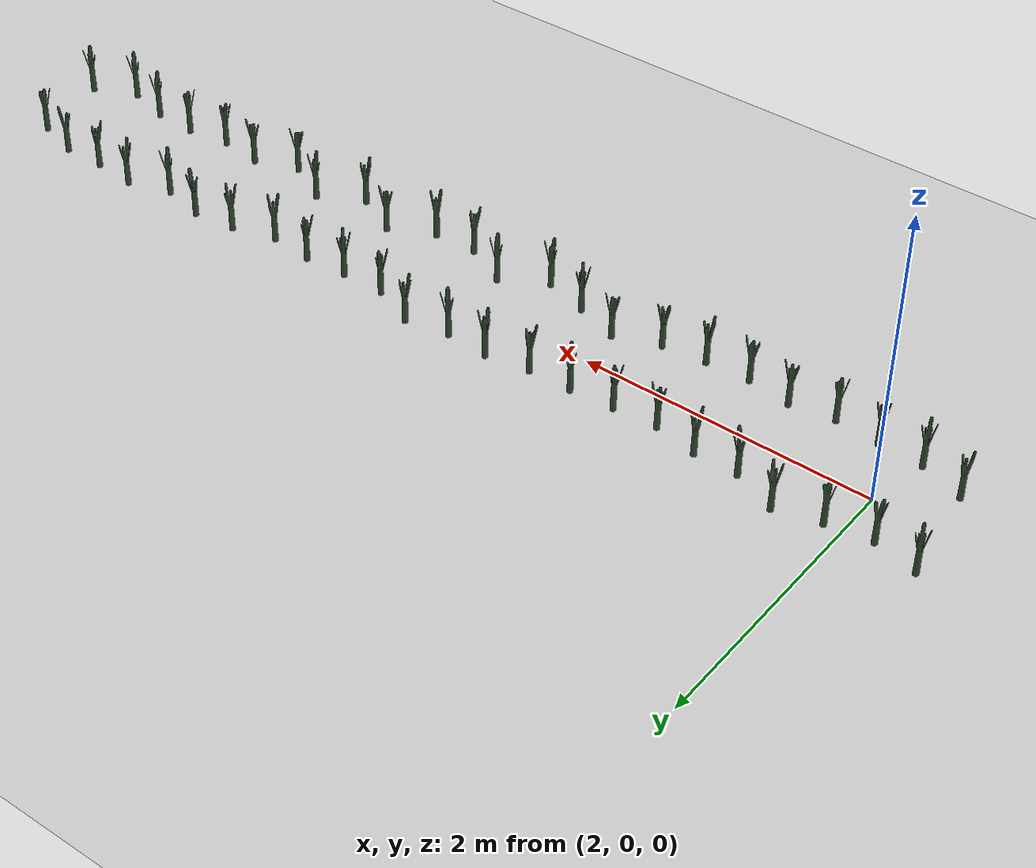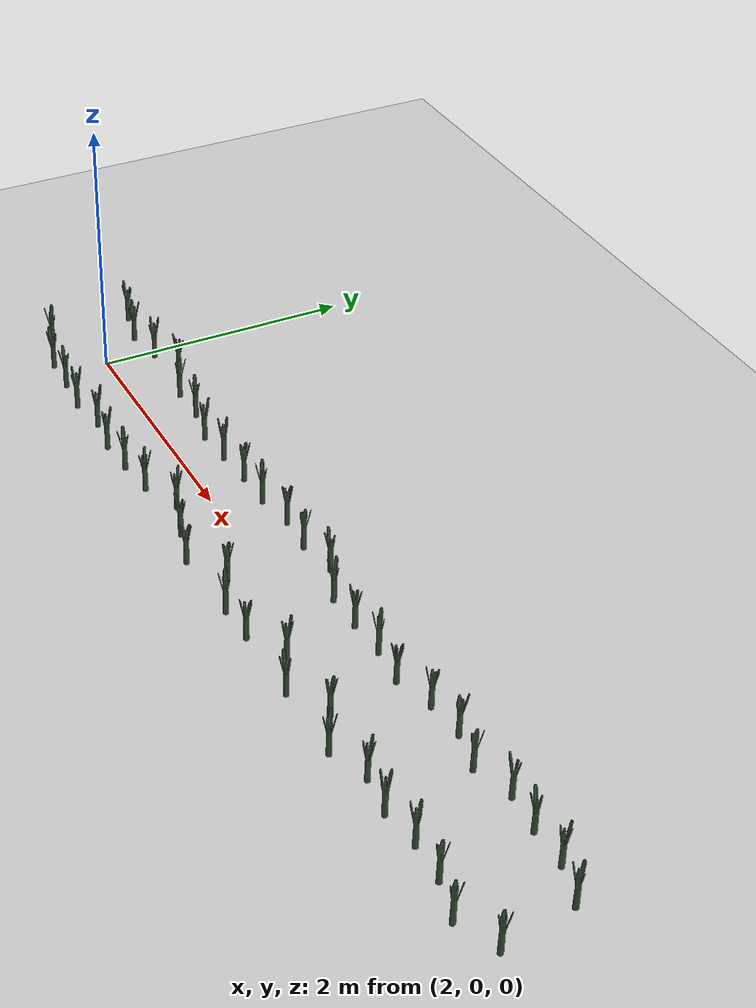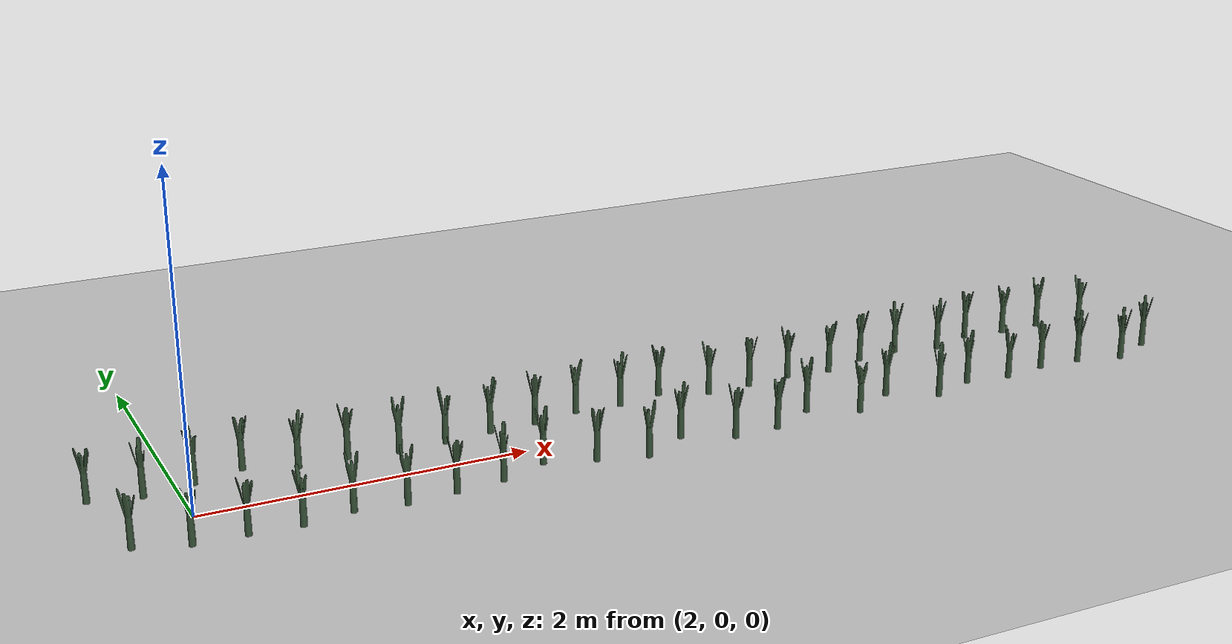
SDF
<sdf version="1.6">
 <world name="default">
  <light name="sun" type="directional">
   <pose>0 0 10 0 -0 0</pose>
   <diffuse>0.5 0.5 0.5 1</diffuse>
   <specular>0.1 0.1 0.1 1</specular>
   <attenuation>
    <range>1000</range>
    <constant>0.9</constant>
    <linear>0.01</linear>
    <quadratic>0.001</quadratic>
   </attenuation>
   <direction>0.9 0.5 -1</direction>
  </light>
  <scene><background>130 200 255 1</background><ambient>130 140 140 1</ambient></scene>
  <include><uri>model://dirt_plane</uri></include>
  <include><uri>model://Leek</uri><pose>1.500000 0.393169 0.15 0 0 -15.379018</pose><static>0</static></include>
  <include>
   <uri>model://Leek</uri>
   <pose>1.800000 0.323330 0.15 0 0 -174.577290</pose>
   <static>0</static>
  </include>
  <include><uri>model://Leek</uri><pose>2.100000 0.371568 0.15 0 0 165.043242</pose><static>0</static></include>
  <include><uri>model://Leek</uri><pose>2.400000 0.449920 0.15 0 0 -8.733430</pose><static>0</static></include>
  <include><uri>model://Leek</uri><pose>2.700000 0.328049 0.15 0 0 87.260594</pose><static>0</static></include>
  <include><uri>model://Leek</uri><pose>3.000000 0.329555 0.15 0 0 71.980805</pose><static>0</static></include>
  <include><uri>model://Leek</uri><pose>3.300000 0.268529 0.15 0 0 56.905303</pose><static>0</static></include>
  <include><uri>model://Leek</uri><pose>3.600000 0.288788 0.15 0 0 -79.591275</pose><static>0</static></include>
  <include><uri>model://Leek</uri><pose>3.900000 0.311620 0.15 0 0 -76.377248</pose><static>0</static></include>
  <include><uri>model://Leek</uri><pose>4.200000 0.317261 0.15 0 0 140.977656</pose><static>0</static></include>
  <include><uri>model://Leek</uri><pose>4.500000 0.367335 0.15 0 0 -76.732680</pose><static>0</static></include>
  <include><uri>model://Leek</uri><pose>4.800000 0.348345 0.15 0 0 18.021161</pose><static>0</static></include>
  <include><uri>model://Leek</uri><pose>5.100000 0.401961 0.15 0 0 -78.549271</pose><static>0</static></include>
  <include><uri>model://Leek</uri><pose>5.400000 0.276526 0.15 0 0 121.762971</pose><static>0</static></include>
  <include><uri>model://Leek</uri><pose>5.700000 0.280335 0.15 0 0 142.029340</pose><static>0</static></include>
  <include><uri>model://Leek</uri><pose>6.000000 0.297197 0.15 0 0 15.023551</pose><static>0</static></include>
  <include>
   <uri>model://Leek</uri>
   <pose>6.300000 0.266600 0.15 0 0 -108.462594</pose>
   <static>0</static>
  </include>
  <include><uri>model://Leek</uri><pose>6.600000 0.352194 0.15 0 0 98.602710</pose><static>0</static></include>
  <include><uri>model://Leek</uri><pose>6.900000 0.380584 0.15 0 0 137.873147</pose><static>0</static></include>
  <include><uri>model://Leek</uri><pose>7.200000 0.308679 0.15 0 0 -0.913679</pose><static>0</static></include>
  <include><uri>model://Leek</uri><pose>7.500000 0.401886 0.15 0 0 110.308839</pose><static>0</static></include>
  <include><uri>model://Leek</uri><pose>7.800000 0.372818 0.15 0 0 172.624690</pose><static>0</static></include>
  <include><uri>model://Leek</uri><pose>8.100000 0.373446 0.15 0 0 -94.045221</pose><static>0</static></include>
  <include>
   <uri>model://Leek</uri>
   <pose>8.400000 0.279980 0.15 0 0 -167.569807</pose>
   <static>0</static>
  </include>
  <include>
   <uri>model://Leek</uri>
   <pose>1.600246 -0.293949 0.15 0 0 122.021060</pose>
   <static>0</static>
  </include>
  <include>
   <uri>model://Leek</uri>
   <pose>1.900246 -0.396502 0.15 0 0 179.280145</pose>
   <static>0</static>
  </include>
  <include>
   <uri>model://Leek</uri>
   <pose>2.200246 -0.408873 0.15 0 0 -166.554575</pose>
   <static>0</static>
  </include>
  <include>
   <uri>model://Leek</uri>
   <pose>2.500246 -0.432891 0.15 0 0 127.441685</pose>
   <static>0</static>
  </include>
  <include>
   <uri>model://Leek</uri>
   <pose>2.800246 -0.385458 0.15 0 0 -93.795594</pose>
   <static>0</static>
  </include>
  <include><uri>model://Leek</uri><pose>3.100246 -0.428089 0.15 0 0 69.456202</pose><static>0</static></include>
  <include>
   <uri>model://Leek</uri>
   <pose>3.400246 -0.410175 0.15 0 0 -179.319382</pose>
   <static>0</static>
  </include>
  <include>
   <uri>model://Leek</uri>
   <pose>3.700246 -0.376373 0.15 0 0 -124.613934</pose>
   <static>0</static>
  </include>
  <include><uri>model://Leek</uri><pose>4.000246 -0.260819 0.15 0 0 32.150509</pose><static>0</static></include>
  <include>
   <uri>model://Leek</uri>
   <pose>4.300246 -0.360118 0.15 0 0 129.328727</pose>
   <static>0</static>
  </include>
  <include><uri>model://Leek</uri><pose>4.600246 -0.448284 0.15 0 0 -1.250888</pose><static>0</static></include>
  <include><uri>model://Leek</uri><pose>4.900246 -0.277723 0.15 0 0 61.876173</pose><static>0</static></include>
  <include>
   <uri>model://Leek</uri>
   <pose>5.200246 -0.425515 0.15 0 0 -166.876853</pose>
   <static>0</static>
  </include>
  <include>
   <uri>model://Leek</uri>
   <pose>5.500246 -0.415416 0.15 0 0 155.468929</pose>
   <static>0</static>
  </include>
  <include>
   <uri>model://Leek</uri>
   <pose>5.800246 -0.265871 0.15 0 0 -30.950077</pose>
   <static>0</static>
  </include>
  <include>
   <uri>model://Leek</uri>
   <pose>6.100246 -0.417933 0.15 0 0 -103.684421</pose>
   <static>0</static>
  </include>
  <include><uri>model://Leek</uri><pose>6.400246 -0.257948 0.15 0 0 -1.126448</pose><static>0</static></include>
  <include>
   <uri>model://Leek</uri>
   <pose>6.700246 -0.418584 0.15 0 0 -11.646972</pose>
   <static>0</static>
  </include>
  <include>
   <uri>model://Leek</uri>
   <pose>7.000246 -0.309863 0.15 0 0 -131.473577</pose>
   <static>0</static>
  </include>
  <include>
   <uri>model://Leek</uri>
   <pose>7.300246 -0.352537 0.15 0 0 -92.403409</pose>
   <static>0</static>
  </include>
  <include>
   <uri>model://Leek</uri>
   <pose>7.600246 -0.310154 0.15 0 0 171.738269</pose>
   <static>0</static>
  </include>
  <include><uri>model://Leek</uri><pose>7.900246 -0.320964 0.15 0 0 24.227382</pose><static>0</static></include>
  <include>
   <uri>model://Leek</uri>
   <pose>8.200246 -0.402900 0.15 0 0 -82.445703</pose>
   <static>0</static>
  </include>
  <include>
   <uri>model://Leek</uri>
   <pose>8.500246 -0.271030 0.15 0 0 -139.024499</pose>
   <static>0</static>
  </include>
 </world>
</sdf>

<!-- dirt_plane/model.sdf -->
<sdf version="1.4">
<model name="dirt_plane">
  <static>true</static>
    <link name="link">
      <collision name="collision">
        <geometry>
          <plane>
            <normal>0 0 1</normal>
            <size>100 100</size>
          </plane>
        </geometry>
        <surface>
          <friction>
            <ode>
              <mu>100</mu>
              <mu2>50</mu2>
            </ode>
          </friction>
        </surface>
      </collision>
      <visual name="visual">
        <cast_shadows>false</cast_shadows>
        <geometry>
          <plane>
            <normal>0 0 1</normal>
            <size>100 100</size>
          </plane>
        </geometry>
        <material>
          <script>
            <uri>model://ground_plane/materials/scripts/my_ground_plane.material</uri>
            <uri>model://ground_plane/materials/textures</uri>
            <name>my_ground_plane/Dirt</name>
          </script>
        </material>
      </visual>
    </link>
  </model>
</sdf>

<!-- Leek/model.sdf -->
<sdf version='1.6'>
  <model name='Leek'>
    <link name='link'>
      <pose frame=''>0 0 0 0 -0 0</pose>
      <inertial>
        <mass>1</mass>
        <inertia>
          <ixx>0.145833</ixx>
          <ixy>0</ixy>
          <ixz>0</ixz>
          <iyy>0.145833</iyy>
          <iyz>0</iyz>
          <izz>0.125</izz>
        </inertia>
        <pose frame=''>0 0 0 0 -0 0</pose>
      </inertial>
      <self_collide>0</self_collide>
      <kinematic>0</kinematic>
      <gravity>1</gravity>
      <visual name='visual'>
        <geometry>
          <mesh>
            <uri>model://Leek/Poireau.dae</uri>
            <scale>1 1 1</scale>
          </mesh>
        </geometry>
        <material>
          <script>
            <name>Gazebo/Grey</name>
            <uri>file://media/materials/scripts/gazebo.material</uri>
          </script>
          <ambient>0.3 0.7 0.4 0</ambient>
          <diffuse>0.2 0.3 0.2 0</diffuse>
          <specular>0 0 0 1</specular>
          <emissive>0 0 0 1</emissive>
          <shader type='vertex'>
            <normal_map>__default__</normal_map>
          </shader>
        </material>
        <pose frame=''>0 0 -0.08 0 -0 0</pose>
        <cast_shadows>1</cast_shadows>
        <transparency>0</transparency>
      </visual>
      <collision name='collision'>
        <laser_retro>0</laser_retro>
        <max_contacts>10</max_contacts>
        <pose frame=''>0 0 0 0 -0 0</pose>
        <geometry>
          <cylinder>
            <radius>0.02</radius>
            <length>0.25</length>
          </cylinder>
        </geometry>
        <surface>
          <friction>
            <ode>
              <mu>1</mu>
              <mu2>1</mu2>
              <fdir1>0 0 0</fdir1>
              <slip1>0</slip1>
              <slip2>0</slip2>
            </ode>
            <torsional>
              <coefficient>1</coefficient>
              <patch_radius>0</patch_radius>
              <surface_radius>0</surface_radius>
              <use_patch_radius>1</use_patch_radius>
              <ode>
                <slip>0</slip>
              </ode>
            </torsional>
          </friction>
          <bounce>
            <restitution_coefficient>0</restitution_coefficient>
            <threshold>1e+06</threshold>
          </bounce>
          <contact>
            <collide_without_contact>0</collide_without_contact>
            <collide_without_contact_bitmask>1</collide_without_contact_bitmask>
            <collide_bitmask>1</collide_bitmask>
            <ode>
              <soft_cfm>0</soft_cfm>
              <soft_erp>0.2</soft_erp>
              <kp>1e+13</kp>
              <kd>1</kd>
              <max_vel>0.01</max_vel>
              <min_depth>0</min_depth>
            </ode>
            <bullet>
              <split_impulse>1</split_impulse>
              <split_impulse_penetration_threshold>-0.01</split_impulse_penetration_threshold>
              <soft_cfm>0</soft_cfm>
              <soft_erp>0.2</soft_erp>
              <kp>1e+13</kp>
              <kd>1</kd>
            </bullet>
          </contact>
        </surface>
      </collision>
    </link>
    <static>0</static>
    <allow_auto_disable>1</allow_auto_disable>
  </model>
</sdf>
